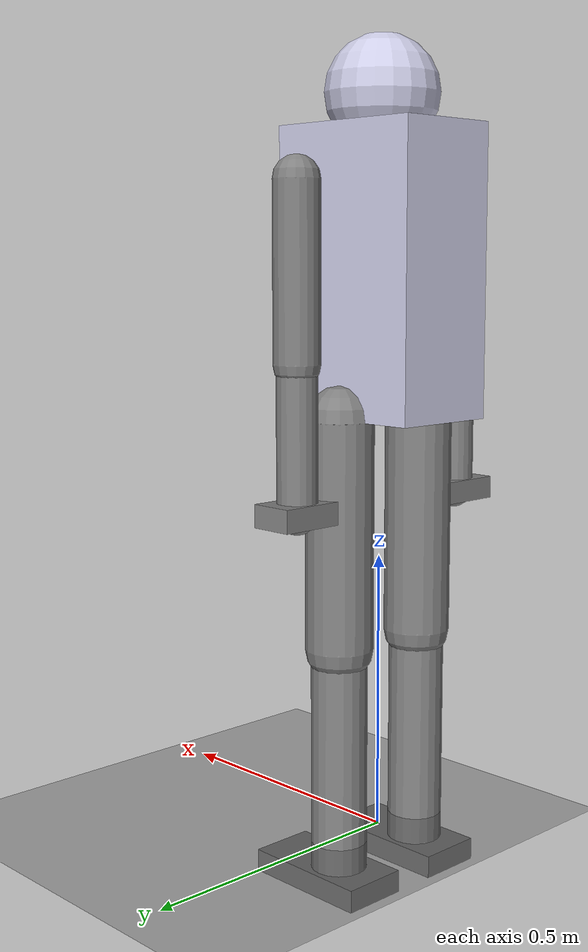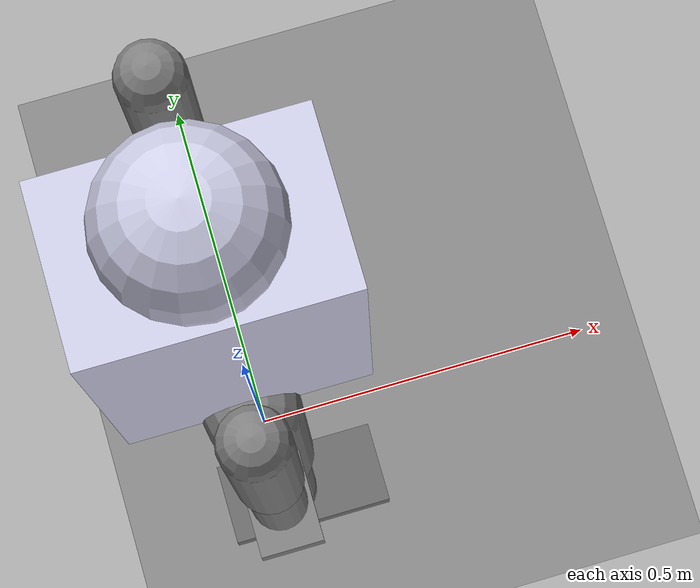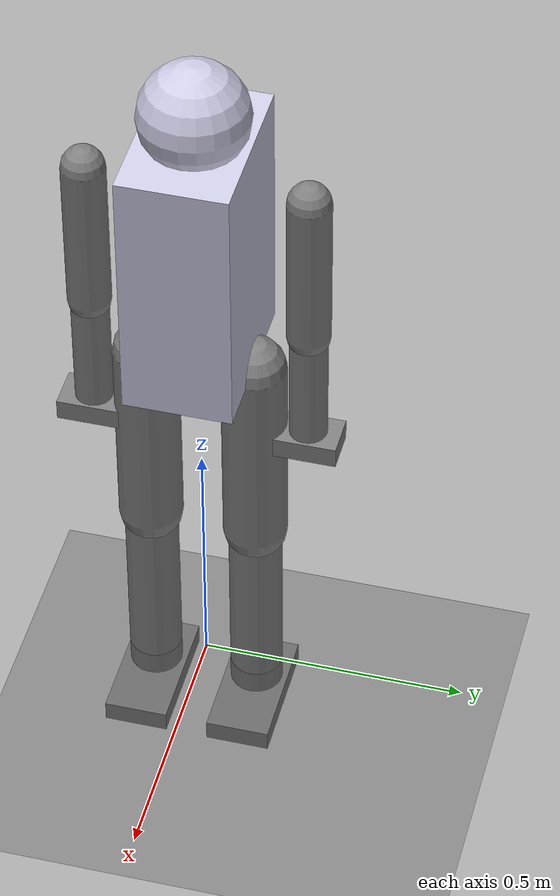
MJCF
<mujoco model="humanoid">
  <compiler angle="radian" meshdir="meshes" autolimits="true"/>

  <option timestep="0.002" iterations="50" solver="Newton" gravity="0 0 -9.81">
    <flag warmstart="enable" constraint="enable"/>
  </option>

  <size njmax="1000" nconmax="400" nstack="1000000"/>

  <visual>
    <headlight ambient="0.5 0.5 0.5" diffuse="0.8 0.8 0.8" specular="0.3 0.3 0.3"/>
    <rgba haze="0.15 0.25 0.35 1"/>
    <global offwidth="1920" offheight="1080"/>
    <quality shadowsize="4096"/>
    <map force="0.1" zfar="30"/>
  </visual>

  <statistic center="0 0 0.7" extent="1.5"/>

  <asset>
    <texture type="skybox" builtin="gradient" rgb1="0.3 0.5 0.7" rgb2="0 0 0" width="512" height="512"/>
    <texture name="texplane" type="2d" builtin="checker" rgb1="0.2 0.2 0.2" rgb2="0.3 0.3 0.3" width="512" height="512" mark="cross" markrgb="0.8 0.8 0.8"/>
    <material name="matplane" reflectance="0.3" texture="texplane" texrepeat="1 1" texuniform="true"/>
    <material name="robot" rgba="0.8 0.8 0.9 1"/>
  </asset>

  <default>
    <joint limited="true" damping="0.5" armature="0.01"/>
    <geom contype="1" conaffinity="1" condim="3" friction="0.9 0.1 0.1" solimp="0.9 0.95 0.001" solref="0.002 1"/>
    <motor ctrllimited="true" ctrlrange="-1 1"/>
    <equality solref="0.002 1"/>
  </default>

  <worldbody>
    <light directional="true" diffuse="0.8 0.8 0.8" specular="0.2 0.2 0.2" pos="0 0 5" dir="0 0 -1"/>
    <geom name="floor" type="plane" size="10 10 0.1" material="matplane"/>

    <!-- Humanoid Robot -->
    <body name="torso" pos="0 0 1.0">
      <camera name="track" mode="trackcom" pos="0 -3 1" xyaxes="1 0 0 0 0 1"/>
      <site name="imu_site" pos="0 0 0" size="0.01"/>
      <freejoint name="root"/>

      <geom name="torso_geom" type="box" size="0.15 0.1 0.25" rgba="0.8 0.8 0.9 1"/>
      <inertial pos="0 0 0" mass="10" diaginertia="0.1 0.1 0.05"/>

      <!-- Head -->
      <body name="head" pos="0 0 0.3">
        <joint name="neck_yaw" type="hinge" axis="0 0 1" range="-1.57 1.57"/>
        <geom name="head_geom" type="sphere" size="0.1" rgba="0.8 0.8 0.9 1"/>
        <inertial pos="0 0 0" mass="2" diaginertia="0.01 0.01 0.01"/>
      </body>

      <!-- Left Arm -->
      <body name="left_upper_arm" pos="0 0.2 0.15">
        <joint name="left_shoulder_pitch" type="hinge" axis="1 0 0" range="-3.14 3.14"/>
        <joint name="left_shoulder_roll" type="hinge" axis="0 1 0" range="-1.57 1.57"/>
        <geom name="left_upper_arm_geom" type="capsule" fromto="0 0 0 0 0 -0.3" size="0.04"/>
        <inertial pos="0 0 -0.15" mass="1.5" diaginertia="0.01 0.01 0.002"/>

        <body name="left_lower_arm" pos="0 0 -0.3">
          <joint name="left_elbow_pitch" type="hinge" axis="1 0 0" range="0 2.5"/>
          <geom name="left_lower_arm_geom" type="capsule" fromto="0 0 0 0 0 -0.25" size="0.035"/>
          <inertial pos="0 0 -0.125" mass="1" diaginertia="0.005 0.005 0.001"/>

          <body name="left_hand" pos="0 0 -0.25">
            <joint name="left_wrist_roll" type="hinge" axis="0 0 1" range="-1.57 1.57"/>
            <geom name="left_hand_geom" type="box" size="0.04 0.06 0.02"/>
            <inertial pos="0 0 0" mass="0.3" diaginertia="0.001 0.001 0.001"/>
          </body>
        </body>
      </body>

      <!-- Right Arm (mirrored) -->
      <body name="right_upper_arm" pos="0 -0.2 0.15">
        <joint name="right_shoulder_pitch" type="hinge" axis="1 0 0" range="-3.14 3.14"/>
        <joint name="right_shoulder_roll" type="hinge" axis="0 1 0" range="-1.57 1.57"/>
        <geom name="right_upper_arm_geom" type="capsule" fromto="0 0 0 0 0 -0.3" size="0.04"/>
        <inertial pos="0 0 -0.15" mass="1.5" diaginertia="0.01 0.01 0.002"/>

        <body name="right_lower_arm" pos="0 0 -0.3">
          <joint name="right_elbow_pitch" type="hinge" axis="1 0 0" range="0 2.5"/>
          <geom name="right_lower_arm_geom" type="capsule" fromto="0 0 0 0 0 -0.25" size="0.035"/>
          <inertial pos="0 0 -0.125" mass="1" diaginertia="0.005 0.005 0.001"/>

          <body name="right_hand" pos="0 0 -0.25">
            <joint name="right_wrist_roll" type="hinge" axis="0 0 1" range="-1.57 1.57"/>
            <geom name="right_hand_geom" type="box" size="0.04 0.06 0.02"/>
            <inertial pos="0 0 0" mass="0.3" diaginertia="0.001 0.001 0.001"/>
          </body>
        </body>
      </body>

      <!-- Left Leg -->
      <body name="left_upper_leg" pos="0 0.1 -0.25">
        <joint name="left_hip_pitch" type="hinge" axis="1 0 0" range="-1.57 1.57"/>
        <joint name="left_hip_roll" type="hinge" axis="0 1 0" range="-0.5 0.5"/>
        <joint name="left_hip_yaw" type="hinge" axis="0 0 1" range="-0.5 0.5"/>
        <geom name="left_upper_leg_geom" type="capsule" fromto="0 0 0 0 0 -0.4" size="0.06"/>
        <inertial pos="0 0 -0.2" mass="5" diaginertia="0.05 0.05 0.01"/>

        <body name="left_lower_leg" pos="0 0 -0.4">
          <joint name="left_knee_pitch" type="hinge" axis="1 0 0" range="-2.5 0"/>
          <geom name="left_lower_leg_geom" type="capsule" fromto="0 0 0 0 0 -0.4" size="0.05"/>
          <inertial pos="0 0 -0.2" mass="3" diaginertia="0.03 0.03 0.005"/>

          <body name="left_foot" pos="0 0 -0.4">
            <joint name="left_ankle_pitch" type="hinge" axis="1 0 0" range="-0.7 0.7"/>
            <joint name="left_ankle_roll" type="hinge" axis="0 1 0" range="-0.3 0.3"/>
            <site name="left_foot_site" pos="0 0 -0.05" size="0.01"/>
            <geom name="left_foot_geom" type="box" size="0.12 0.06 0.02" pos="0.03 0 -0.02"/>
            <inertial pos="0 0 -0.02" mass="1" diaginertia="0.005 0.005 0.005"/>
          </body>
        </body>
      </body>

      <!-- Right Leg (mirrored) -->
      <body name="right_upper_leg" pos="0 -0.1 -0.25">
        <joint name="right_hip_pitch" type="hinge" axis="1 0 0" range="-1.57 1.57"/>
        <joint name="right_hip_roll" type="hinge" axis="0 1 0" range="-0.5 0.5"/>
        <joint name="right_hip_yaw" type="hinge" axis="0 0 1" range="-0.5 0.5"/>
        <geom name="right_upper_leg_geom" type="capsule" fromto="0 0 0 0 0 -0.4" size="0.06"/>
        <inertial pos="0 0 -0.2" mass="5" diaginertia="0.05 0.05 0.01"/>

        <body name="right_lower_leg" pos="0 0 -0.4">
          <joint name="right_knee_pitch" type="hinge" axis="1 0 0" range="-2.5 0"/>
          <geom name="right_lower_leg_geom" type="capsule" fromto="0 0 0 0 0 -0.4" size="0.05"/>
          <inertial pos="0 0 -0.2" mass="3" diaginertia="0.03 0.03 0.005"/>

          <body name="right_foot" pos="0 0 -0.4">
            <joint name="right_ankle_pitch" type="hinge" axis="1 0 0" range="-0.7 0.7"/>
            <joint name="right_ankle_roll" type="hinge" axis="0 1 0" range="-0.3 0.3"/>
            <site name="right_foot_site" pos="0 0 -0.05" size="0.01"/>
            <geom name="right_foot_geom" type="box" size="0.12 0.06 0.02" pos="0.03 0 -0.02"/>
            <inertial pos="0 0 -0.02" mass="1" diaginertia="0.005 0.005 0.005"/>
          </body>
        </body>
      </body>
    </body>
  </worldbody>

  <actuator>
    <!-- Head -->
    <position name="neck_yaw_motor" joint="neck_yaw" kp="100"/>

    <!-- Left Arm -->
    <position name="left_shoulder_pitch_motor" joint="left_shoulder_pitch" kp="200"/>
    <position name="left_shoulder_roll_motor" joint="left_shoulder_roll" kp="200"/>
    <position name="left_elbow_pitch_motor" joint="left_elbow_pitch" kp="100"/>
    <position name="left_wrist_roll_motor" joint="left_wrist_roll" kp="50"/>

    <!-- Right Arm -->
    <position name="right_shoulder_pitch_motor" joint="right_shoulder_pitch" kp="200"/>
    <position name="right_shoulder_roll_motor" joint="right_shoulder_roll" kp="200"/>
    <position name="right_elbow_pitch_motor" joint="right_elbow_pitch" kp="100"/>
    <position name="right_wrist_roll_motor" joint="right_wrist_roll" kp="50"/>

    <!-- Left Leg -->
    <position name="left_hip_pitch_motor" joint="left_hip_pitch" kp="500"/>
    <position name="left_hip_roll_motor" joint="left_hip_roll" kp="500"/>
    <position name="left_hip_yaw_motor" joint="left_hip_yaw" kp="500"/>
    <position name="left_knee_pitch_motor" joint="left_knee_pitch" kp="500"/>
    <position name="left_ankle_pitch_motor" joint="left_ankle_pitch" kp="300"/>
    <position name="left_ankle_roll_motor" joint="left_ankle_roll" kp="300"/>

    <!-- Right Leg -->
    <position name="right_hip_pitch_motor" joint="right_hip_pitch" kp="500"/>
    <position name="right_hip_roll_motor" joint="right_hip_roll" kp="500"/>
    <position name="right_hip_yaw_motor" joint="right_hip_yaw" kp="500"/>
    <position name="right_knee_pitch_motor" joint="right_knee_pitch" kp="500"/>
    <position name="right_ankle_pitch_motor" joint="right_ankle_pitch" kp="300"/>
    <position name="right_ankle_roll_motor" joint="right_ankle_roll" kp="300"/>
  </actuator>

  <sensor>
    <!-- IMU sensor -->
    <accelerometer name="imu_accel" site="imu_site"/>
    <gyro name="imu_gyro" site="imu_site"/>

    <!-- Foot force sensors -->
    <force name="left_foot_force" site="left_foot_site"/>
    <torque name="left_foot_torque" site="left_foot_site"/>
    <force name="right_foot_force" site="right_foot_site"/>
    <torque name="right_foot_torque" site="right_foot_site"/>

    <!-- Torso pose -->
    <framepos name="torso_pos" objtype="body" objname="torso"/>
    <framequat name="torso_quat" objtype="body" objname="torso"/>
    <framelinvel name="torso_linvel" objtype="body" objname="torso"/>
    <frameangvel name="torso_angvel" objtype="body" objname="torso"/>
  </sensor>

  <keyframe>
    <key name="standing" qpos="0 0 1.0 1 0 0 0 0 0 0 0 0 0 0 0 0 0 0 0 0 0 0 0 0 0 0 0 0 0"/>
  </keyframe>
</mujoco>
